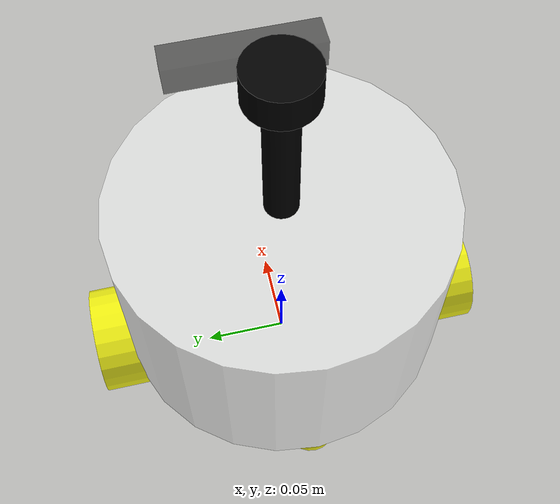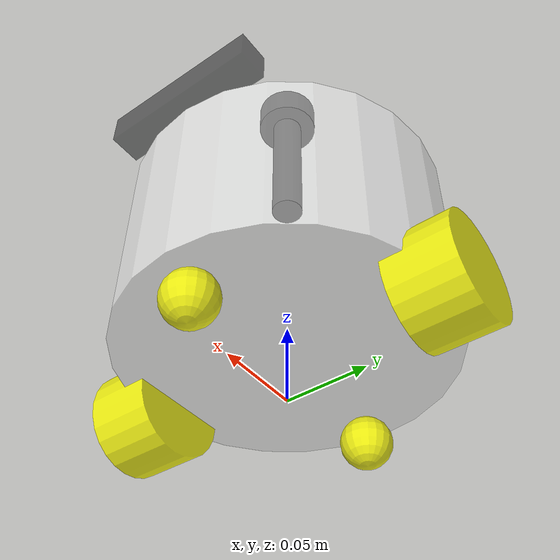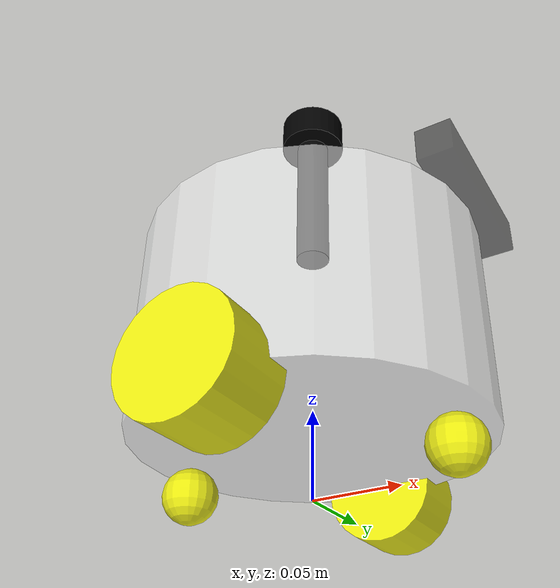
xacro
<?xml version="1.0"?>
<robot xmlns:xacro="http://www.ros.org/wiki/xacro" name="szcbot_robot">
<!-- 身体 -->
<xacro:include filename="$(find szcbot_description)/urdf/szcbot/base.urdf.xacro"/>
<!-- 传感器 -->
<xacro:include filename="$(find szcbot_description)/urdf/szcbot/sensor/laser.urdf.xacro"/>
<xacro:include filename="$(find szcbot_description)/urdf/szcbot/sensor/imu.urdf.xacro"/>
<xacro:include filename="$(find szcbot_description)/urdf/szcbot/sensor/camera.urdf.xacro"/>
<!-- 执行器 -->
<xacro:include filename="$(find szcbot_description)/urdf/szcbot/actuator/whell.urdf.xacro"/>
<xacro:include filename="$(find szcbot_description)/urdf/szcbot/actuator/caster.urdf.xacro"/>
<!-- 插件 -->
<xacro:include filename="$(find szcbot_description)/urdf/szcbot/plugins/gazebo_sensor_plugin.xacro"/>
<xacro:include filename="$(find szcbot_description)/urdf/szcbot/szcbot.ros2_control.xacro"/>

<xacro:base_xacro length="0.12" radius="0.10"/>
<xacro:imu_xacro xyz="0.0 0.0 0.02"/>
<xacro:camera_xacro xyz="0.10 0.0 0.07"/>
<xacro:laser_xacro  xyz="0.00 0.0 0.11"/>

<xacro:wheel_xacro wheel_name="left_wheel" xyz="0.0 0.10 -0.06"/>
<xacro:wheel_xacro wheel_name="right_wheel" xyz="0.0 -0.10 -0.06"/>
<xacro:caster_xacro caster_name="front_caster" xyz="0.08 0.0 -0.076"/>
<xacro:caster_xacro caster_name="back_caster" xyz="-0.08 0.0 -0.076"/>

<xacro:gazebo_sensor_plugin/>
<xacro:szcbot_ros2_control/>

</robot>

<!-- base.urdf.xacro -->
<robot xmlns:xacro="http://www.ros.org/wiki/xacro">
    <xacro:include filename="$(find szcbot_description)/urdf/szcbot/common_inertia.xacro"/>

    <xacro:macro name="base_xacro" params="length radius">
    <link name="base_footprint"/>

    <!-- 机器人的身体部分 -->
    <link name="base_link">
        <!-- 部件的外观描述 -->
        <visual>
        <!-- 沿着自己几何中心的偏移和旋转 -->
            <origin xyz="0.0 0.0 0.0" rpy="0.0 0.0 0.0"/>
            <!-- 几何形状 -->
            <geometry>
                <!-- 圆柱体 半径0.10m，高度0.12m -->
                <cylinder radius="${radius}" length="${length}"/>
            </geometry>
            <!-- 材质和颜色 -->
            <material name="white">
                <color rgba="1.0 1.0 1.0 0.5"/>
            </material>
        </visual>
        <collision>
        <!-- 沿着自己几何中心的偏移和旋转 -->
            <origin xyz="0.0 0.0 0.0" rpy="0.0 0.0 0.0"/>
            <!-- 几何形状 -->
            <geometry>
                <!-- 圆柱体 半径0.10m，高度0.12m -->
                <cylinder radius="${radius}" length="${length}"/>
            </geometry>
            <!-- 材质和颜色 -->
            <material name="white">
                <color rgba="1.0 1.0 1.0 0.5"/>
            </material>
        </collision>

        <!-- 机器人的惯性描述 -->
        <xacro:cylinder_inertia m="1.0" r="${radius}" h="${length}" />
    </link>
    <joint name="base_joint" type="fixed">
        <!-- 关节的父部件 -->
        <parent link="base_footprint"/>
        <!-- 关节的子部件 -->
        <child link="base_link"/>
        <!-- 关节的偏移和旋转 -->
        <origin xyz="0.0 0.0 ${length/2.0+0.032-0.001}" rpy="0.0 0.0 0.0"/>
    </joint>
        <gazebo reference ="base_link">
        <material>Gazebo/Blue</material>
    </gazebo>
    </xacro:macro>

</robot>

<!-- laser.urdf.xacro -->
<robot xmlns:xacro="http://www.ros.org/wiki/xacro">
    <xacro:include filename="$(find szcbot_description)/urdf/szcbot/common_inertia.xacro"/>

    <!-- 机器人的激光雷达部件 -->
        <xacro:macro name="laser_xacro" params="xyz">

        <!-- 激光雷达的支撑杆 -->
    <link name="laser_cylinder_link">
        <visual>
        <!-- 沿着自己几何中心的偏移和旋转 -->
            <origin xyz="0.0 0.0 0.0" rpy="0.0 0.0 0.0"/>
            <!-- 几何形状 -->
            <geometry>
                <cylinder radius="0.01" length="0.10"/>
            </geometry>
            <!-- 材质和颜色 -->
            <material name="black">
                <color rgba="0.0 0.0 0.0 1.0"/>
            </material>
        </visual>
        <collision>
                <!-- 沿着自己几何中心的偏移和旋转 -->
            <origin xyz="0.0 0.0 0.0" rpy="0.0 0.0 0.0"/>
            <!-- 几何形状 -->
            <geometry>
                <cylinder radius="0.01" length="0.10"/>
            </geometry>
            <!-- 材质和颜色 -->
            <material name="black">
                <color rgba="0.0 0.0 0.0 1.0"/>
            </material>
        </collision>
        <xacro:cylinder_inertia m="0.05" r="0.01" h="0.10" />

    </link>

    <!-- 激光雷达的主体 -->
        <link name="laser_link">
        <visual>
        <!-- 沿着自己几何中心的偏移和旋转 -->
            <origin xyz="0.0 0.0 0.0" rpy="0.0 0.0 0.0"/>
            <!-- 几何形状 -->
            <geometry>
                <cylinder radius="0.02" length="0.02"/>
            </geometry>
            <!-- 材质和颜色 -->
            <material name="black">
                <color rgba="0.0 0.0 0.0 1.0"/>
            </material>
        </visual>
         <collision>
                 <!-- 沿着自己几何中心的偏移和旋转 -->
            <origin xyz="0.0 0.0 0.0" rpy="0.0 0.0 0.0"/>
            <!-- 几何形状 -->
            <geometry>
                <cylinder radius="0.02" length="0.02"/>
            </geometry>
            <!-- 材质和颜色 -->
            <material name="black">
                <color rgba="0.0 0.0 0.0 1.0"/>
            </material>
        </collision>
        <xacro:cylinder_inertia m="0.10" r="0.02" h="0.02" />
    </link>

        <!-- 机器人的关节，用于组合各个部件 -->
    <joint name="laser_joint" type="fixed">
        <!-- 关节的父部件 -->
        <parent link="laser_cylinder_link"/>
        <!-- 关节的子部件 -->
        <child link="laser_link"/>
        <!-- 关节的偏移和旋转 -->
        <origin xyz="0.0 0.0 0.05" rpy="0.0 0.0 0.0"/>
    </joint>

        <joint name="laser_cylinder_joint" type="fixed">
        <!-- 关节的父部件 -->
        <parent link="base_link"/>
        <!-- 关节的子部件 -->
        <child link="laser_cylinder_link"/>
        <!-- 关节的偏移和旋转 -->
        <origin xyz="${xyz}" rpy="0.0 0.0 0.0"/>
    </joint>
    <!-- gazebo标签-->
    <gazebo reference ="laser_cylinder_link">
        <material>Gazebo/Black</material>
    </gazebo>
    <gazebo reference ="laser_link">
        <material>Gazebo/Black</material>
    </gazebo>

    </xacro:macro>

</robot>

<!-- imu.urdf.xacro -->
<robot xmlns:xacro="http://www.ros.org/wiki/xacro">
    <xacro:include filename="$(find szcbot_description)/urdf/szcbot/common_inertia.xacro"/>

    <!-- 机器人的IMU部件，惯性测量传感器 -->
        <xacro:macro name="imu_xacro" params="xyz">
        <link name="imu_link">
        <!-- 部件的外观描述 -->
        <visual>
        <!-- 沿着自己几何中心的偏移和旋转 -->
            <origin xyz="0.0 0.0 0.0" rpy="0.0 0.0 0.0"/>
            <!-- 几何形状 -->
            <geometry>
                <!-- 正方体0.02m x 0.02m x 0.02m -->
                <box size="0.02 0.02 0.02"/>
            </geometry>
            <!-- 材质和颜色 -->
            <material name="black">
                <color rgba="0.0 0.0 0.0 0.5"/>
            </material>
        </visual>
        <collision>
        <!-- 沿着自己几何中心的偏移和旋转 -->
            <origin xyz="0.0 0.0 0.0" rpy="0.0 0.0 0.0"/>
            <!-- 几何形状 -->
            <geometry>
                <!-- 正方体0.02m x 0.02m x 0.02m -->
                <box size="0.02 0.02 0.02"/>
            </geometry>
            <!-- 材质和颜色 -->
            <material name="black">
                <color rgba="0.0 0.0 0.0 0.5"/>
            </material>
        </collision>
        <xacro:box_inertia m="0.05" w="0.02" h="0.02" d="0.02" />

    </link>
        <!-- 机器人的关节，用于组合各个部件 -->
    <joint name="imu_joint" type="fixed">
        <!-- 关节的父部件 -->
        <parent link="base_link"/>
        <!-- 关节的子部件 -->
        <child link="imu_link"/>
        <!-- 关节的偏移和旋转 -->
        <origin xyz="${xyz}" rpy="0.0 0.0 0.0"/>
    </joint>

        <gazebo reference ="imu_link">
        <material>Gazebo/Red</material>
    </gazebo>
    </xacro:macro>

</robot>

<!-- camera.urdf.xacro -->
<robot xmlns:xacro="http://www.ros.org/wiki/xacro">
    <xacro:include filename="$(find szcbot_description)/urdf/szcbot/common_inertia.xacro"/>

    <!-- 机器人的摄像头部件 -->
        <xacro:macro name="camera_xacro" params="xyz">
        <link name="camera_link">
        <!-- 部件的外观描述 -->
        <visual>
        <!-- 沿着自己几何中心的偏移和旋转 -->
            <origin xyz="0.0 0.0 0.0" rpy="0.0 0.0 0.0"/>
            <!-- 几何形状 -->
            <geometry>
                <box size="0.02 0.10 0.02"/>
            </geometry>
            <!-- 材质和颜色 -->
            <material name="black">
                <color rgba="0.0 0.0 0.0 0.5"/>
            </material>
        </visual>
        <collision>
        <!-- 沿着自己几何中心的偏移和旋转 -->
            <origin xyz="0.0 0.0 0.0" rpy="0.0 0.0 0.0"/>
            <!-- 几何形状 -->
            <geometry>
                <box size="0.02 0.10 0.02"/>
            </geometry>
            <!-- 材质和颜色 -->
            <material name="black">
                <color rgba="0.0 0.0 0.0 0.5"/>
            </material>
        </collision>
        <xacro:box_inertia m="0.1" w="0.02" h="0.10" d="0.02" />

    </link>
        <!-- 机器人的关节，用于组合各个部件 -->
    <joint name="camera_joint" type="fixed">
        <!-- 关节的父部件 -->
        <parent link="base_link"/>
        <!-- 关节的子部件 -->
        <child link="camera_link"/>
        <!-- 关节的偏移和旋转 -->
        <origin xyz="${xyz}" rpy="0.0 0.0 0.0"/>
    </joint>
            <gazebo reference ="camera_link">
        <material>Gazebo/Black</material>
    </gazebo>
    </xacro:macro>

</robot>

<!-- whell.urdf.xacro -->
<robot xmlns:xacro="http://www.ros.org/wiki/xacro">
    <xacro:include filename="$(find szcbot_description)/urdf/szcbot/common_inertia.xacro"/>

    <!-- 机器人的轮子部件 -->
        <xacro:macro name="wheel_xacro" params="wheel_name xyz">
        <link name="${wheel_name}_link">
        <!-- 部件的外观描述 -->
        <visual>
        <!-- 沿着自己几何中心的偏移和旋转 -->
            <origin xyz="0.0 0.0 0.0" rpy="1.57079 0.0 0.0"/>
            <!-- 几何形状 -->
            <geometry>
                <cylinder radius="0.0325" length="0.04"/>
            </geometry>
            <!-- 材质和颜色 -->
            <material name="yellow">
                <color rgba="1.0 1.0 0.0 0.85"/>
            </material>
        </visual>
        <collision>
        <!-- 沿着自己几何中心的偏移和旋转 -->
            <origin xyz="0.0 0.0 0.0" rpy="1.57079 0.0 0.0"/>
            <!-- 几何形状 -->
            <geometry>
                <cylinder radius="0.0325" length="0.04"/>
            </geometry>
            <!-- 材质和颜色 -->
            <material name="yellow">
                <color rgba="1.0 1.0 0.0 0.85"/>
            </material>
        </collision>
        <xacro:cylinder_inertia m="0.05" r="0.0325" h="0.04" />

    </link>
        <!-- 机器人的关节，用于组合各个部件 -->
    <joint name="${wheel_name}_joint" type="continuous">
        <!-- 关节的父部件 -->
        <parent link="base_link"/>
        <!-- 关节的子部件 -->
        <child link="${wheel_name}_link"/>
        <!-- 关节的偏移和旋转 -->
        <origin xyz="${xyz}" rpy="0.0 0.0 0.0"/>
        <axis xyz="0.0 1.0 0.0"/>
    </joint>
                <gazebo reference ="${wheel_name}_link">
        <material>Gazebo/Yellow</material>
        <mu1 value="20.0"/>
        <mu2 value="20.0"/>
        <kp value="1000000000.0"/>
        <kd value="1.0"/>
    </gazebo>
    </xacro:macro>

</robot>

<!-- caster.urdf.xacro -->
<robot xmlns:xacro="http://www.ros.org/wiki/xacro">
    <xacro:include filename="$(find szcbot_description)/urdf/szcbot/common_inertia.xacro"/>

    <!-- 机器人的轮子部件 -->
        <xacro:macro name="caster_xacro" params="caster_name xyz">
        <link name="${caster_name}_link">
        <!-- 部件的外观描述 -->
        <visual>
        <!-- 沿着自己几何中心的偏移和旋转 -->
            <origin xyz="0.0 0.0 0.0" rpy=" 0.0 0.0 0.0"/>
            <!-- 几何形状 -->
            <geometry>
                <sphere radius="0.016"/>
            </geometry>
            <!-- 材质和颜色 -->
            <material name="yellow">
                <color rgba="1.0 1.0 0.0 0.85"/>
            </material>
        </visual>
        <collision>
        <!-- 沿着自己几何中心的偏移和旋转 -->
            <origin xyz="0.0 0.0 0.0" rpy=" 0.0 0.0 0.0"/>
            <!-- 几何形状 -->
            <geometry>
                <sphere radius="0.016"/>
            </geometry>
            <!-- 材质和颜色 -->
            <material name="yellow">
                <color rgba="1.0 1.0 0.0 0.85"/>
            </material>
        </collision>
        <xacro:sphere_inertia m="0.05" r="0.016" />
    </link>
        <!-- 机器人的关节，用于组合各个部件 -->
    <joint name="${caster_name}_joint" type="fixed">
        <!-- 关节的父部件 -->
        <parent link="base_link"/>
        <!-- 关节的子部件 -->
        <child link="${caster_name}_link"/>
        <!-- 关节的偏移和旋转 -->
        <origin xyz="${xyz}" rpy="0.0 0.0 0.0"/>
    </joint>
                    <gazebo reference ="${caster_name}_link">
        <material>Gazebo/Yellow</material>
        <mu1 value="0.0"/>
        <mu2 value="0.0"/>
        <kp value="1000000000.0"/>
        <kd value="1.0"/>
    </gazebo>
    </xacro:macro>

</robot>
